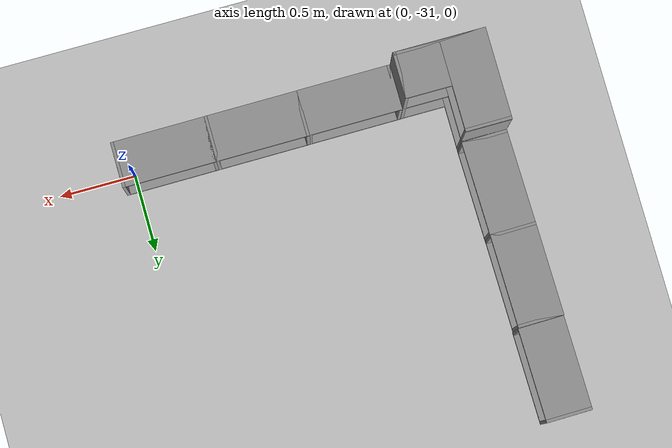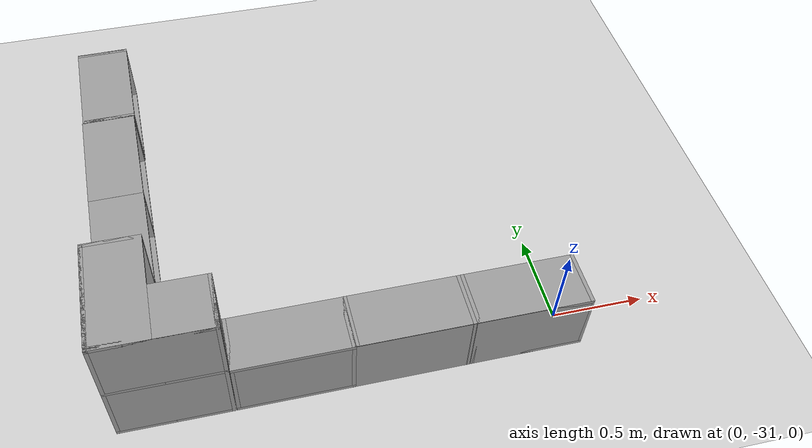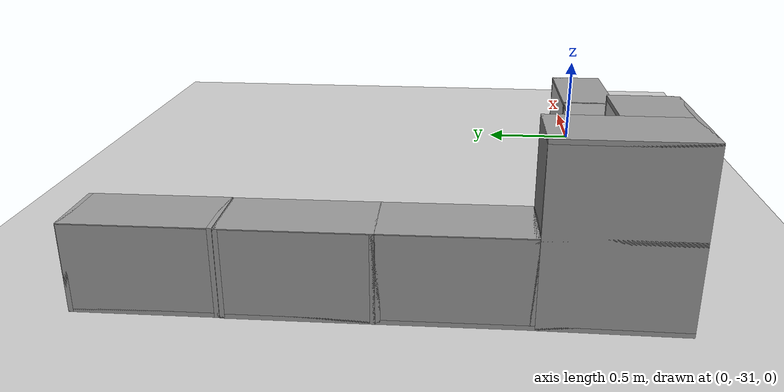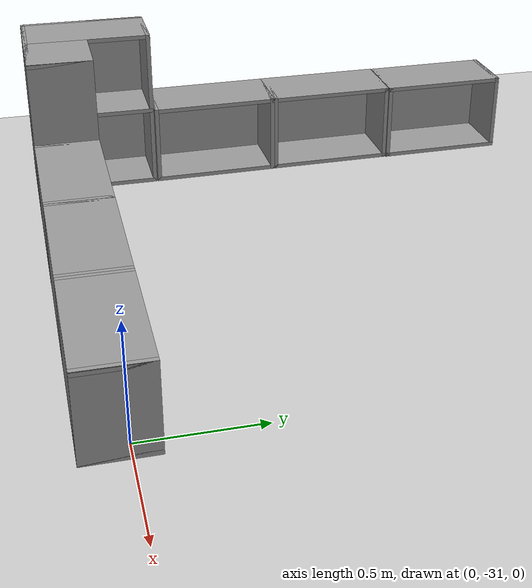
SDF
<sdf version="1.7">
 <world name="default">
  <include><uri>model://ground_plane</uri></include>
  <model name="Wall_Cabinet_24x15W">
   <link name="Wall_41">
    <pose>0 0 0.01 0 -0 0</pose>
    <inertial>
     <mass>1.4983</mass>
     <inertia><ixx>0.011</ixx><iyy>0.0571</iyy><izz>0.0462</izz><ixy>0</ixy><ixz>0</ixz><iyz>0</iyz></inertia>
    </inertial>
    <collision name="Wall_41_Collision"><geometry><box><size>0.608 0.296 0.02</size></box></geometry></collision>
    <visual name="Wall_41_Visual">
     <geometry><box><size>0.608 0.296 0.02</size></box></geometry>
     <material>
      <script><uri>file://media/materials/scripts/gazebo.material</uri><name>Gazebo/Grey</name></script>
      <ambient>1 1 1 1</ambient>
     </material>
    </visual>
    <pose>0.000184 0.181953 0 0 -0 0</pose>
   </link>
   <joint name="41_43" type="fixed">
    <pose>-0.304 0 0 0 -0 0</pose>
    <parent>Wall_43</parent>
    <child>Wall_41</child>
    <axis><xyz>0 0 1</xyz><limit><lower>-1e+16</lower><upper>1e+16</upper></limit></axis>
   </joint>
   <joint name="41_45" type="fixed">
    <pose>0.304 0 0 0 -0 0</pose>
    <parent>Wall_45</parent>
    <child>Wall_41</child>
    <axis><xyz>0 0 1</xyz><limit><lower>-1e+16</lower><upper>1e+16</upper></limit></axis>
   </joint>
   <joint name="41_49" type="fixed">
    <pose>0 -0.148 0 0 -0 0</pose>
    <parent>Wall_49</parent>
    <child>Wall_41</child>
    <axis><xyz>0 0 1</xyz><limit><lower>-1e+16</lower><upper>1e+16</upper></limit></axis>
   </joint>
   <link name="Wall_43">
    <pose>-0.294 0 0.192 0 -0 0</pose>
    <inertial>
     <mass>0.9463</mass>
     <inertia><ixx>0.0069</ixx><iyy>0.0185</iyy><izz>0.0117</izz><ixy>0</ixy><ixz>0</ixz><iyz>0</iyz></inertia>
    </inertial>
    <collision name="Wall_43_Collision"><geometry><box><size>0.02 0.296 0.384</size></box></geometry></collision>
    <visual name="Wall_43_Visual">
     <geometry><box><size>0.02 0.296 0.384</size></box></geometry>
     <material>
      <script><uri>file://media/materials/scripts/gazebo.material</uri><name>Gazebo/Grey</name></script>
      <ambient>1 1 1 1</ambient>
     </material>
    </visual>
   </link>
   <link name="Wall_45">
    <pose>0.294 0 0.192 0 -0 0</pose>
    <inertial>
     <mass>0.9463</mass>
     <inertia><ixx>0.0069</ixx><iyy>0.0185</iyy><izz>0.0117</izz><ixy>0</ixy><ixz>0</ixz><iyz>0</iyz></inertia>
    </inertial>
    <collision name="Wall_45_Collision"><geometry><box><size>0.02 0.296 0.384</size></box></geometry></collision>
    <visual name="Wall_45_Visual">
     <geometry><box><size>0.02 0.296 0.384</size></box></geometry>
     <material>
      <script><uri>file://media/materials/scripts/gazebo.material</uri><name>Gazebo/Grey</name></script>
      <ambient>1 1 1 1</ambient>
     </material>
    </visual>
   </link>
   <link name="Wall_47">
    <pose>0 0 0.374 0 -0 0</pose>
    <inertial>
     <mass>1.4983</mass>
     <inertia><ixx>0.011</ixx><iyy>0.0571</iyy><izz>0.0462</izz><ixy>0</ixy><ixz>0</ixz><iyz>0</iyz></inertia>
    </inertial>
    <collision name="Wall_47_Collision"><geometry><box><size>0.608 0.296 0.02</size></box></geometry></collision>
    <visual name="Wall_47_Visual">
     <geometry><box><size>0.608 0.296 0.02</size></box></geometry>
     <material>
      <script><uri>file://media/materials/scripts/gazebo.material</uri><name>Gazebo/Grey</name></script>
      <ambient>1 1 1 1</ambient>
     </material>
    </visual>
   </link>
   <joint name="47_43" type="fixed">
    <pose>-0.304 0 0 0 -0 0</pose>
    <parent>Wall_43</parent>
    <child>Wall_47</child>
    <axis><xyz>0 0 1</xyz><limit><lower>-1e+16</lower><upper>1e+16</upper></limit></axis>
   </joint>
   <joint name="47_45" type="fixed">
    <pose>0.304 0 0 0 -0 0</pose>
    <parent>Wall_45</parent>
    <child>Wall_47</child>
    <axis><xyz>0 0 1</xyz><limit><lower>-1e+16</lower><upper>1e+16</upper></limit></axis>
   </joint>
   <joint name="47_49" type="fixed">
    <pose>0 -0.148 0 0 -0 0</pose>
    <parent>Wall_49</parent>
    <child>Wall_47</child>
    <axis><xyz>0 0 1</xyz><limit><lower>-1e+16</lower><upper>1e+16</upper></limit></axis>
   </joint>
   <link name="Wall_49">
    <pose>0 -0.138 0.19 0 -0 0</pose>
    <inertial>
     <mass>1.9108</mass>
     <inertia><ixx>0.0231</ixx><iyy>0.0582</iyy><izz>0.0811</izz><ixy>0</ixy><ixz>0</ixz><iyz>0</iyz></inertia>
    </inertial>
    <collision name="Wall_49_Collision"><geometry><box><size>0.604 0.02 0.38</size></box></geometry></collision>
    <visual name="Wall_49_Visual">
     <geometry><box><size>0.604 0.02 0.38</size></box></geometry>
     <material>
      <script><uri>file://media/materials/scripts/gazebo.material</uri><name>Gazebo/Grey</name></script>
      <ambient>1 1 1 1</ambient>
     </material>
    </visual>
   </link>
   <joint name="49_43" type="fixed">
    <pose>-0.302 0 0 0 -0 0</pose>
    <parent>Wall_41</parent>
    <child>Wall_49</child>
    <axis><xyz>0 1 0</xyz><limit><lower>-1e+16</lower><upper>1e+16</upper></limit></axis>
   </joint>
   <joint name="49_45" type="fixed">
    <pose>0.302 0 0 0 -0 0</pose>
    <parent>Wall_45</parent>
    <child>Wall_49</child>
    <axis><xyz>0 1 0</xyz><limit><lower>-1e+16</lower><upper>1e+16</upper></limit></axis>
   </joint>
   <static>1</static>
   <pose>-1.43427 -31.0459 0 0 -0 0.003071</pose>
  </model>
  <model name="Wall_Cabinet_Coin_24x30W">
   <link name="Wall_10">
    <pose>0.286 -0.148 0.384 0 -0 0</pose>
    <inertial>
     <mass>2.1259</mass>
     <inertia><ixx>0.0158</ixx><iyy>0.1202</iyy><izz>0.1046</izz><ixy>0</ixy><ixz>0</ixz><iyz>0</iyz></inertia>
    </inertial>
    <collision name="Wall_10_Collision"><geometry><box><size>0.02 0.296 0.768</size></box></geometry></collision>
    <visual name="Wall_10_Visual">
     <geometry><box><size>0.02 0.296 0.768</size></box></geometry>
     <material>
      <script><uri>file://media/materials/scripts/gazebo.material</uri><name>Gazebo/Grey</name></script>
      <ambient>1 1 1 1</ambient>
     </material>
    </visual>
   </link>
   <joint name="10_16" type="fixed">
    <pose>0 0 -0.374 0 -0 0</pose>
    <parent>Wall_16</parent>
    <child>Wall_10</child>
    <axis><xyz>1 0 0</xyz><limit><lower>-1e+16</lower><upper>1e+16</upper></limit></axis>
   </joint>
   <joint name="10_14" type="fixed">
    <parent>Wall_14</parent>
    <child>Wall_10</child>
    <axis><xyz>1 0 0</xyz><limit><lower>-1e+16</lower><upper>1e+16</upper></limit></axis>
   </joint>
   <joint name="10_12" type="fixed">
    <pose>0 0 0.374 0 -0 0</pose>
    <parent>Wall_12</parent>
    <child>Wall_10</child>
    <axis><xyz>1 0 0</xyz><limit><lower>-1e+16</lower><upper>1e+16</upper></limit></axis>
   </joint>
   <joint name="10_29" type="fixed">
    <pose>0 -0.148 0 0 -0 0</pose>
    <parent>Wall_29</parent>
    <child>Wall_10</child>
    <axis><xyz>1 0 0</xyz><limit><lower>-1e+16</lower><upper>1e+16</upper></limit></axis>
   </joint>
   <link name="Wall_12">
    <pose>0.148 -0.148 0.758 0 -0 0</pose>
    <inertial>
     <mass>0.8802</mass>
     <inertia><ixx>0.0065</ixx><iyy>0.0139</iyy><izz>0.0074</izz><ixy>0</ixy><ixz>0</ixz><iyz>0</iyz></inertia>
    </inertial>
    <collision name="Wall_12_Collision"><geometry><box><size>0.296 0.296 0.02</size></box></geometry></collision>
    <visual name="Wall_12_Visual">
     <geometry><box><size>0.296 0.296 0.02</size></box></geometry>
     <material>
      <script><uri>file://media/materials/scripts/gazebo.material</uri><name>Gazebo/Grey</name></script>
      <ambient>1 1 1 1</ambient>
     </material>
    </visual>
   </link>
   <joint name="12_29" type="fixed">
    <pose>0 -0.148 0 0 -0 0</pose>
    <parent>Wall_29</parent>
    <child>Wall_12</child>
    <axis><xyz>0 0 1</xyz><limit><lower>-1e+16</lower><upper>1e+16</upper></limit></axis>
   </joint>
   <link name="Wall_14">
    <pose>0.148 -0.148 0.384 0 -0 0</pose>
    <inertial>
     <mass>0.8802</mass>
     <inertia><ixx>0.0065</ixx><iyy>0.0139</iyy><izz>0.0074</izz><ixy>0</ixy><ixz>0</ixz><iyz>0</iyz></inertia>
    </inertial>
    <collision name="Wall_14_Collision"><geometry><box><size>0.296 0.296 0.02</size></box></geometry></collision>
    <visual name="Wall_14_Visual">
     <geometry><box><size>0.296 0.296 0.02</size></box></geometry>
     <material>
      <script><uri>file://media/materials/scripts/gazebo.material</uri><name>Gazebo/Grey</name></script>
      <ambient>1 1 1 1</ambient>
     </material>
    </visual>
   </link>
   <joint name="14_29" type="fixed">
    <pose>0 -0.148 0 0 -0 0</pose>
    <parent>Wall_29</parent>
    <child>Wall_14</child>
    <axis><xyz>0 1 0</xyz><limit><lower>-1e+16</lower><upper>1e+16</upper></limit></axis>
   </joint>
   <link name="Wall_16">
    <pose>0.148 -0.148 0.01 0 -0 0</pose>
    <inertial>
     <mass>0.8802</mass>
     <inertia><ixx>0.0065</ixx><iyy>0.0139</iyy><izz>0.0074</izz><ixy>0</ixy><ixz>0</ixz><iyz>0</iyz></inertia>
    </inertial>
    <collision name="Wall_16_Collision"><geometry><box><size>0.296 0.296 0.02</size></box></geometry></collision>
    <visual name="Wall_16_Visual">
     <geometry><box><size>0.296 0.296 0.02</size></box></geometry>
     <material>
      <script><uri>file://media/materials/scripts/gazebo.material</uri><name>Gazebo/Grey</name></script>
      <ambient>1 1 1 1</ambient>
     </material>
    </visual>
   </link>
   <joint name="16_29" type="fixed">
    <pose>0 -0.148 0 0 -0 0</pose>
    <parent>Wall_29</parent>
    <child>Wall_16</child>
    <axis><xyz>0 1 0</xyz><limit><lower>-1e+16</lower><upper>1e+16</upper></limit></axis>
   </joint>
   <link name="Wall_18">
    <pose>-0.148 0 0.01 0 -0 0</pose>
    <inertial>
     <mass>1.6525</mass>
     <inertia><ixx>0.0491</ixx><iyy>0.0613</iyy><izz>0.0123</izz><ixy>0</ixy><ixz>0</ixz><iyz>0</iyz></inertia>
    </inertial>
    <collision name="Wall_18_Collision"><geometry><box><size>0.296 0.592 0.02</size></box></geometry></collision>
    <visual name="Wall_18_Visual">
     <geometry><box><size>0.296 0.592 0.02</size></box></geometry>
     <material>
      <script><uri>file://media/materials/scripts/gazebo.material</uri><name>Gazebo/Grey</name></script>
      <ambient>1 1 1 1</ambient>
     </material>
    </visual>
   </link>
   <joint name="18_16" type="fixed">
    <pose>0.148 -0.148 0 0 -0 0</pose>
    <parent>Wall_16</parent>
    <child>Wall_18</child>
    <axis><xyz>1 0 0</xyz><limit><lower>-1e+16</lower><upper>1e+16</upper></limit></axis>
   </joint>
   <joint name="18_29" type="fixed">
    <pose>0 -0.296 0 0 -0 0</pose>
    <parent>Wall_29</parent>
    <child>Wall_18</child>
    <axis><xyz>0 1 0</xyz><limit><lower>-1e+16</lower><upper>1e+16</upper></limit></axis>
   </joint>
   <joint name="18_27" type="fixed">
    <pose>-0.148 0 0 0 -0 0</pose>
    <parent>Wall_27</parent>
    <child>Wall_18</child>
    <axis><xyz>1 0 0</xyz><limit><lower>-1e+16</lower><upper>1e+16</upper></limit></axis>
   </joint>
   <joint name="18_30" type="fixed">
    <pose>0 0.296 0 0 -0 0</pose>
    <parent>Wall_30</parent>
    <child>Wall_18</child>
    <axis><xyz>0 1 0</xyz><limit><lower>-1e+16</lower><upper>1e+16</upper></limit></axis>
   </joint>
   <link name="Wall_20">
    <pose>-0.148 0 0.384 0 -0 0</pose>
    <inertial>
     <mass>1.6525</mass>
     <inertia><ixx>0.0491</ixx><iyy>0.0613</iyy><izz>0.0123</izz><ixy>0</ixy><ixz>0</ixz><iyz>0</iyz></inertia>
    </inertial>
    <collision name="Wall_20_Collision"><geometry><box><size>0.296 0.592 0.02</size></box></geometry></collision>
    <visual name="Wall_20_Visual">
     <geometry><box><size>0.296 0.592 0.02</size></box></geometry>
     <material>
      <script><uri>file://media/materials/scripts/gazebo.material</uri><name>Gazebo/Grey</name></script>
      <ambient>1 1 1 1</ambient>
     </material>
    </visual>
   </link>
   <joint name="20_14" type="fixed">
    <pose>0.148 -0.148 0 0 -0 0</pose>
    <parent>Wall_14</parent>
    <child>Wall_20</child>
    <axis><xyz>1 0 0</xyz><limit><lower>-1e+16</lower><upper>1e+16</upper></limit></axis>
   </joint>
   <joint name="20_29" type="fixed">
    <pose>0 -0.296 0 0 -0 0</pose>
    <parent>Wall_29</parent>
    <child>Wall_20</child>
    <axis><xyz>0 1 0</xyz><limit><lower>-1e+16</lower><upper>1e+16</upper></limit></axis>
   </joint>
   <joint name="20_27" type="fixed">
    <pose>-0.148 0 0 0 -0 0</pose>
    <parent>Wall_27</parent>
    <child>Wall_20</child>
    <axis><xyz>1 0 0</xyz><limit><lower>-1e+16</lower><upper>1e+16</upper></limit></axis>
   </joint>
   <joint name="20_30" type="fixed">
    <pose>0 0.296 0 0 -0 0</pose>
    <parent>Wall_30</parent>
    <child>Wall_20</child>
    <axis><xyz>0 1 0</xyz><limit><lower>-1e+16</lower><upper>1e+16</upper></limit></axis>
   </joint>
   <link name="Wall_22">
    <pose>-0.148 0 0.758 0 -0 0</pose>
    <inertial>
     <mass>1.6525</mass>
     <inertia><ixx>0.0491</ixx><iyy>0.0613</iyy><izz>0.0123</izz><ixy>0</ixy><ixz>0</ixz><iyz>0</iyz></inertia>
    </inertial>
    <collision name="Wall_22_Collision"><geometry><box><size>0.296 0.592 0.02</size></box></geometry></collision>
    <visual name="Wall_22_Visual">
     <geometry><box><size>0.296 0.592 0.02</size></box></geometry>
     <material>
      <script><uri>file://media/materials/scripts/gazebo.material</uri><name>Gazebo/Grey</name></script>
      <ambient>1 1 1 1</ambient>
     </material>
    </visual>
   </link>
   <joint name="22_12" type="fixed">
    <pose>0.148 -0.148 0 0 -0 0</pose>
    <parent>Wall_12</parent>
    <child>Wall_22</child>
    <axis><xyz>1 0 0</xyz><limit><lower>-1e+16</lower><upper>1e+16</upper></limit></axis>
   </joint>
   <joint name="22_29" type="fixed">
    <pose>0 -0.296 0 0 -0 0</pose>
    <parent>Wall_29</parent>
    <child>Wall_22</child>
    <axis><xyz>0 1 0</xyz><limit><lower>-1e+16</lower><upper>1e+16</upper></limit></axis>
   </joint>
   <joint name="22_27" type="fixed">
    <pose>-0.148 0 0 0 -0 0</pose>
    <parent>Wall_27</parent>
    <child>Wall_22</child>
    <axis><xyz>1 0 0</xyz><limit><lower>-1e+16</lower><upper>1e+16</upper></limit></axis>
   </joint>
   <joint name="22_30" type="fixed">
    <pose>0 0.296 0 0 -0 0</pose>
    <parent>Wall_30</parent>
    <child>Wall_22</child>
    <axis><xyz>0 1 0</xyz><limit><lower>-1e+16</lower><upper>1e+16</upper></limit></axis>
   </joint>
   <link name="Wall_27">
    <pose>-0.286 0 0.384 0 -0 0</pose>
    <inertial>
     <mass>4.2589</mass>
     <inertia><ixx>0.1266</ixx><iyy>0.3358</iyy><izz>0.2095</izz><ixy>0</ixy><ixz>0</ixz><iyz>0</iyz></inertia>
    </inertial>
    <collision name="Wall_27_Collision"><geometry><box><size>0.02 0.592 0.768</size></box></geometry></collision>
    <visual name="Wall_27_Visual">
     <geometry><box><size>0.02 0.592 0.768</size></box></geometry>
     <material>
      <script><uri>file://media/materials/scripts/gazebo.material</uri><name>Gazebo/Grey</name></script>
      <ambient>1 1 1 1</ambient>
     </material>
    </visual>
   </link>
   <joint name="27_30" type="fixed">
    <pose>0 0.296 0 0 -0 0</pose>
    <parent>Wall_30</parent>
    <child>Wall_27</child>
    <axis><xyz>0 1 0</xyz><limit><lower>-1e+16</lower><upper>1e+16</upper></limit></axis>
   </joint>
   <link name="Wall_29">
    <pose>0 -0.286 0.384 0 -0 0</pose>
    <inertial>
     <mass>4.3176</mass>
     <inertia><ixx>0.134</ixx><iyy>0.2091</iyy><izz>0.3428</izz><ixy>0</ixy><ixz>0</ixz><iyz>0</iyz></inertia>
    </inertial>
    <collision name="Wall_29_Collision"><geometry><box><size>0.592 0.02 0.768</size></box></geometry></collision>
    <visual name="Wall_29_Visual">
     <geometry><box><size>0.592 0.02 0.768</size></box></geometry>
     <material>
      <script><uri>file://media/materials/scripts/gazebo.material</uri><name>Gazebo/Grey</name></script>
      <ambient>1 1 1 1</ambient>
     </material>
    </visual>
   </link>
   <link name="Wall_30">
    <pose>-0.148 0.286 0.384 0 -0 0</pose>
    <inertial>
     <mass>2.1093</mass>
     <inertia><ixx>0.1021</ixx><iyy>0.0157</iyy><izz>0.1177</izz><ixy>0</ixy><ixz>0</ixz><iyz>0</iyz></inertia>
    </inertial>
    <collision name="Wall_30_Collision"><geometry><box><size>0.296 0.02 0.768</size></box></geometry></collision>
    <visual name="Wall_30_Visual">
     <geometry><box><size>0.296 0.02 0.768</size></box></geometry>
     <material>
      <script><uri>file://media/materials/scripts/gazebo.material</uri><name>Gazebo/Grey</name></script>
      <ambient>1 1 1 1</ambient>
     </material>
    </visual>
   </link>
   <static>1</static>
   <pose>-2.03675 -30.8993 0 0 -0 0</pose>
  </model>
  <model name="Wall_Cabinet_24x15W_clone">
   <link name="Wall_41">
    <pose>0 0 0.01 0 -0 0</pose>
    <inertial>
     <mass>1.4983</mass>
     <inertia><ixx>0.011</ixx><iyy>0.0571</iyy><izz>0.0462</izz><ixy>0</ixy><ixz>0</ixz><iyz>0</iyz></inertia>
    </inertial>
    <collision name="Wall_41_Collision"><geometry><box><size>0.608 0.296 0.02</size></box></geometry></collision>
    <visual name="Wall_41_Visual">
     <geometry><box><size>0.608 0.296 0.02</size></box></geometry>
     <material>
      <script><uri>file://media/materials/scripts/gazebo.material</uri><name>Gazebo/Grey</name></script>
      <ambient>1 1 1 1</ambient>
     </material>
    </visual>
    <pose>0.000184 0.181953 0 0 -0 0</pose>
   </link>
   <joint name="41_43" type="fixed">
    <pose>-0.304 0 0 0 -0 0</pose>
    <parent>Wall_43</parent>
    <child>Wall_41</child>
    <axis><xyz>0 0 1</xyz><limit><lower>-1e+16</lower><upper>1e+16</upper></limit></axis>
   </joint>
   <joint name="41_45" type="fixed">
    <pose>0.304 0 0 0 -0 0</pose>
    <parent>Wall_45</parent>
    <child>Wall_41</child>
    <axis><xyz>0 0 1</xyz><limit><lower>-1e+16</lower><upper>1e+16</upper></limit></axis>
   </joint>
   <joint name="41_49" type="fixed">
    <pose>0 -0.148 0 0 -0 0</pose>
    <parent>Wall_49</parent>
    <child>Wall_41</child>
    <axis><xyz>0 0 1</xyz><limit><lower>-1e+16</lower><upper>1e+16</upper></limit></axis>
   </joint>
   <link name="Wall_43">
    <pose>-0.294 0 0.192 0 -0 0</pose>
    <inertial>
     <mass>0.9463</mass>
     <inertia><ixx>0.0069</ixx><iyy>0.0185</iyy><izz>0.0117</izz><ixy>0</ixy><ixz>0</ixz><iyz>0</iyz></inertia>
    </inertial>
    <collision name="Wall_43_Collision"><geometry><box><size>0.02 0.296 0.384</size></box></geometry></collision>
    <visual name="Wall_43_Visual">
     <geometry><box><size>0.02 0.296 0.384</size></box></geometry>
     <material>
      <script><uri>file://media/materials/scripts/gazebo.material</uri><name>Gazebo/Grey</name></script>
      <ambient>1 1 1 1</ambient>
     </material>
    </visual>
   </link>
   <link name="Wall_45">
    <pose>0.294 0 0.192 0 -0 0</pose>
    <inertial>
     <mass>0.9463</mass>
     <inertia><ixx>0.0069</ixx><iyy>0.0185</iyy><izz>0.0117</izz><ixy>0</ixy><ixz>0</ixz><iyz>0</iyz></inertia>
    </inertial>
    <collision name="Wall_45_Collision"><geometry><box><size>0.02 0.296 0.384</size></box></geometry></collision>
    <visual name="Wall_45_Visual">
     <geometry><box><size>0.02 0.296 0.384</size></box></geometry>
     <material>
      <script><uri>file://media/materials/scripts/gazebo.material</uri><name>Gazebo/Grey</name></script>
      <ambient>1 1 1 1</ambient>
     </material>
    </visual>
   </link>
   <link name="Wall_47">
    <pose>0 0 0.374 0 -0 0</pose>
    <inertial>
     <mass>1.4983</mass>
     <inertia><ixx>0.011</ixx><iyy>0.0571</iyy><izz>0.0462</izz><ixy>0</ixy><ixz>0</ixz><iyz>0</iyz></inertia>
    </inertial>
    <collision name="Wall_47_Collision"><geometry><box><size>0.608 0.296 0.02</size></box></geometry></collision>
    <visual name="Wall_47_Visual">
     <geometry><box><size>0.608 0.296 0.02</size></box></geometry>
     <material>
      <script><uri>file://media/materials/scripts/gazebo.material</uri><name>Gazebo/Grey</name></script>
      <ambient>1 1 1 1</ambient>
     </material>
    </visual>
   </link>
   <joint name="47_43" type="fixed">
    <pose>-0.304 0 0 0 -0 0</pose>
    <parent>Wall_43</parent>
    <child>Wall_47</child>
    <axis><xyz>0 0 1</xyz><limit><lower>-1e+16</lower><upper>1e+16</upper></limit></axis>
   </joint>
   <joint name="47_45" type="fixed">
    <pose>0.304 0 0 0 -0 0</pose>
    <parent>Wall_45</parent>
    <child>Wall_47</child>
    <axis><xyz>0 0 1</xyz><limit><lower>-1e+16</lower><upper>1e+16</upper></limit></axis>
   </joint>
   <joint name="47_49" type="fixed">
    <pose>0 -0.148 0 0 -0 0</pose>
    <parent>Wall_49</parent>
    <child>Wall_47</child>
    <axis><xyz>0 0 1</xyz><limit><lower>-1e+16</lower><upper>1e+16</upper></limit></axis>
   </joint>
   <link name="Wall_49">
    <pose>0 -0.138 0.19 0 -0 0</pose>
    <inertial>
     <mass>1.9108</mass>
     <inertia><ixx>0.0231</ixx><iyy>0.0582</iyy><izz>0.0811</izz><ixy>0</ixy><ixz>0</ixz><iyz>0</iyz></inertia>
    </inertial>
    <collision name="Wall_49_Collision"><geometry><box><size>0.604 0.02 0.38</size></box></geometry></collision>
    <visual name="Wall_49_Visual">
     <geometry><box><size>0.604 0.02 0.38</size></box></geometry>
     <material>
      <script><uri>file://media/materials/scripts/gazebo.material</uri><name>Gazebo/Grey</name></script>
      <ambient>1 1 1 1</ambient>
     </material>
    </visual>
   </link>
   <joint name="49_43" type="fixed">
    <pose>-0.302 0 0 0 -0 0</pose>
    <parent>Wall_41</parent>
    <child>Wall_49</child>
    <axis><xyz>0 1 0</xyz><limit><lower>-1e+16</lower><upper>1e+16</upper></limit></axis>
   </joint>
   <joint name="49_45" type="fixed">
    <pose>0.302 0 0 0 -0 0</pose>
    <parent>Wall_45</parent>
    <child>Wall_49</child>
    <axis><xyz>0 1 0</xyz><limit><lower>-1e+16</lower><upper>1e+16</upper></limit></axis>
   </joint>
   <static>1</static>
   <pose>-0.830104 -31.0433 0 0 -0 0.003071</pose>
  </model>
  <model name="Wall_Cabinet_24x15W_clone_0">
   <link name="Wall_41">
    <pose>0 0 0.01 0 -0 0</pose>
    <inertial>
     <mass>1.4983</mass>
     <inertia><ixx>0.011</ixx><iyy>0.0571</iyy><izz>0.0462</izz><ixy>0</ixy><ixz>0</ixz><iyz>0</iyz></inertia>
    </inertial>
    <collision name="Wall_41_Collision"><geometry><box><size>0.608 0.296 0.02</size></box></geometry></collision>
    <visual name="Wall_41_Visual">
     <geometry><box><size>0.608 0.296 0.02</size></box></geometry>
     <material>
      <script><uri>file://media/materials/scripts/gazebo.material</uri><name>Gazebo/Grey</name></script>
      <ambient>1 1 1 1</ambient>
     </material>
    </visual>
    <pose>0.000184 0.181953 0 0 -0 0</pose>
   </link>
   <joint name="41_43" type="fixed">
    <pose>-0.304 0 0 0 -0 0</pose>
    <parent>Wall_43</parent>
    <child>Wall_41</child>
    <axis><xyz>0 0 1</xyz><limit><lower>-1e+16</lower><upper>1e+16</upper></limit></axis>
   </joint>
   <joint name="41_45" type="fixed">
    <pose>0.304 0 0 0 -0 0</pose>
    <parent>Wall_45</parent>
    <child>Wall_41</child>
    <axis><xyz>0 0 1</xyz><limit><lower>-1e+16</lower><upper>1e+16</upper></limit></axis>
   </joint>
   <joint name="41_49" type="fixed">
    <pose>0 -0.148 0 0 -0 0</pose>
    <parent>Wall_49</parent>
    <child>Wall_41</child>
    <axis><xyz>0 0 1</xyz><limit><lower>-1e+16</lower><upper>1e+16</upper></limit></axis>
   </joint>
   <link name="Wall_43">
    <pose>-0.294 0 0.192 0 -0 0</pose>
    <inertial>
     <mass>0.9463</mass>
     <inertia><ixx>0.0069</ixx><iyy>0.0185</iyy><izz>0.0117</izz><ixy>0</ixy><ixz>0</ixz><iyz>0</iyz></inertia>
    </inertial>
    <collision name="Wall_43_Collision"><geometry><box><size>0.02 0.296 0.384</size></box></geometry></collision>
    <visual name="Wall_43_Visual">
     <geometry><box><size>0.02 0.296 0.384</size></box></geometry>
     <material>
      <script><uri>file://media/materials/scripts/gazebo.material</uri><name>Gazebo/Grey</name></script>
      <ambient>1 1 1 1</ambient>
     </material>
    </visual>
   </link>
   <link name="Wall_45">
    <pose>0.294 0 0.192 0 -0 0</pose>
    <inertial>
     <mass>0.9463</mass>
     <inertia><ixx>0.0069</ixx><iyy>0.0185</iyy><izz>0.0117</izz><ixy>0</ixy><ixz>0</ixz><iyz>0</iyz></inertia>
    </inertial>
    <collision name="Wall_45_Collision"><geometry><box><size>0.02 0.296 0.384</size></box></geometry></collision>
    <visual name="Wall_45_Visual">
     <geometry><box><size>0.02 0.296 0.384</size></box></geometry>
     <material>
      <script><uri>file://media/materials/scripts/gazebo.material</uri><name>Gazebo/Grey</name></script>
      <ambient>1 1 1 1</ambient>
     </material>
    </visual>
   </link>
   <link name="Wall_47">
    <pose>0 0 0.374 0 -0 0</pose>
    <inertial>
     <mass>1.4983</mass>
     <inertia><ixx>0.011</ixx><iyy>0.0571</iyy><izz>0.0462</izz><ixy>0</ixy><ixz>0</ixz><iyz>0</iyz></inertia>
    </inertial>
    <collision name="Wall_47_Collision"><geometry><box><size>0.608 0.296 0.02</size></box></geometry></collision>
    <visual name="Wall_47_Visual">
     <geometry><box><size>0.608 0.296 0.02</size></box></geometry>
     <material>
      <script><uri>file://media/materials/scripts/gazebo.material</uri><name>Gazebo/Grey</name></script>
      <ambient>1 1 1 1</ambient>
     </material>
    </visual>
   </link>
   <joint name="47_43" type="fixed">
    <pose>-0.304 0 0 0 -0 0</pose>
    <parent>Wall_43</parent>
    <child>Wall_47</child>
    <axis><xyz>0 0 1</xyz><limit><lower>-1e+16</lower><upper>1e+16</upper></limit></axis>
   </joint>
   <joint name="47_45" type="fixed">
    <pose>0.304 0 0 0 -0 0</pose>
    <parent>Wall_45</parent>
    <child>Wall_47</child>
    <axis><xyz>0 0 1</xyz><limit><lower>-1e+16</lower><upper>1e+16</upper></limit></axis>
   </joint>
   <joint name="47_49" type="fixed">
    <pose>0 -0.148 0 0 -0 0</pose>
    <parent>Wall_49</parent>
    <child>Wall_47</child>
    <axis><xyz>0 0 1</xyz><limit><lower>-1e+16</lower><upper>1e+16</upper></limit></axis>
   </joint>
   <link name="Wall_49">
    <pose>0 -0.138 0.19 0 -0 0</pose>
    <inertial>
     <mass>1.9108</mass>
     <inertia><ixx>0.0231</ixx><iyy>0.0582</iyy><izz>0.0811</izz><ixy>0</ixy><ixz>0</ixz><iyz>0</iyz></inertia>
    </inertial>
    <collision name="Wall_49_Collision"><geometry><box><size>0.604 0.02 0.38</size></box></geometry></collision>
    <visual name="Wall_49_Visual">
     <geometry><box><size>0.604 0.02 0.38</size></box></geometry>
     <material>
      <script><uri>file://media/materials/scripts/gazebo.material</uri><name>Gazebo/Grey</name></script>
      <ambient>1 1 1 1</ambient>
     </material>
    </visual>
   </link>
   <joint name="49_43" type="fixed">
    <pose>-0.302 0 0 0 -0 0</pose>
    <parent>Wall_41</parent>
    <child>Wall_49</child>
    <axis><xyz>0 1 0</xyz><limit><lower>-1e+16</lower><upper>1e+16</upper></limit></axis>
   </joint>
   <joint name="49_45" type="fixed">
    <pose>0.302 0 0 0 -0 0</pose>
    <parent>Wall_45</parent>
    <child>Wall_49</child>
    <axis><xyz>0 1 0</xyz><limit><lower>-1e+16</lower><upper>1e+16</upper></limit></axis>
   </joint>
   <static>1</static>
   <pose>-0.22268 -31.0411 0 0 -0 0.003071</pose>
  </model>
  <model name="Wall_Cabinet_24x15W_clone_0_clone_0">
   <link name="Wall_41">
    <pose>0 0 0.01 0 -0 0</pose>
    <inertial>
     <mass>1.4983</mass>
     <inertia><ixx>0.011</ixx><iyy>0.0571</iyy><izz>0.0462</izz><ixy>0</ixy><ixz>0</ixz><iyz>0</iyz></inertia>
    </inertial>
    <collision name="Wall_41_Collision"><geometry><box><size>0.608 0.296 0.02</size></box></geometry></collision>
    <visual name="Wall_41_Visual">
     <geometry><box><size>0.608 0.296 0.02</size></box></geometry>
     <material>
      <script><uri>file://media/materials/scripts/gazebo.material</uri><name>Gazebo/Grey</name></script>
      <ambient>1 1 1 1</ambient>
     </material>
    </visual>
    <pose>0.000184 0.181953 0 0 -0 0</pose>
   </link>
   <joint name="41_43" type="fixed">
    <pose>-0.304 0 0 0 -0 0</pose>
    <parent>Wall_43</parent>
    <child>Wall_41</child>
    <axis><xyz>0 0 1</xyz><limit><lower>-1e+16</lower><upper>1e+16</upper></limit></axis>
   </joint>
   <joint name="41_45" type="fixed">
    <pose>0.304 0 0 0 -0 0</pose>
    <parent>Wall_45</parent>
    <child>Wall_41</child>
    <axis><xyz>0 0 1</xyz><limit><lower>-1e+16</lower><upper>1e+16</upper></limit></axis>
   </joint>
   <joint name="41_49" type="fixed">
    <pose>0 -0.148 0 0 -0 0</pose>
    <parent>Wall_49</parent>
    <child>Wall_41</child>
    <axis><xyz>0 0 1</xyz><limit><lower>-1e+16</lower><upper>1e+16</upper></limit></axis>
   </joint>
   <link name="Wall_43">
    <pose>-0.294 0 0.192 0 -0 0</pose>
    <inertial>
     <mass>0.9463</mass>
     <inertia><ixx>0.0069</ixx><iyy>0.0185</iyy><izz>0.0117</izz><ixy>0</ixy><ixz>0</ixz><iyz>0</iyz></inertia>
    </inertial>
    <collision name="Wall_43_Collision"><geometry><box><size>0.02 0.296 0.384</size></box></geometry></collision>
    <visual name="Wall_43_Visual">
     <geometry><box><size>0.02 0.296 0.384</size></box></geometry>
     <material>
      <script><uri>file://media/materials/scripts/gazebo.material</uri><name>Gazebo/Grey</name></script>
      <ambient>1 1 1 1</ambient>
     </material>
    </visual>
   </link>
   <link name="Wall_45">
    <pose>0.294 0 0.192 0 -0 0</pose>
    <inertial>
     <mass>0.9463</mass>
     <inertia><ixx>0.0069</ixx><iyy>0.0185</iyy><izz>0.0117</izz><ixy>0</ixy><ixz>0</ixz><iyz>0</iyz></inertia>
    </inertial>
    <collision name="Wall_45_Collision"><geometry><box><size>0.02 0.296 0.384</size></box></geometry></collision>
    <visual name="Wall_45_Visual">
     <geometry><box><size>0.02 0.296 0.384</size></box></geometry>
     <material>
      <script><uri>file://media/materials/scripts/gazebo.material</uri><name>Gazebo/Grey</name></script>
      <ambient>1 1 1 1</ambient>
     </material>
    </visual>
   </link>
   <link name="Wall_47">
    <pose>0 0 0.374 0 -0 0</pose>
    <inertial>
     <mass>1.4983</mass>
     <inertia><ixx>0.011</ixx><iyy>0.0571</iyy><izz>0.0462</izz><ixy>0</ixy><ixz>0</ixz><iyz>0</iyz></inertia>
    </inertial>
    <collision name="Wall_47_Collision"><geometry><box><size>0.608 0.296 0.02</size></box></geometry></collision>
    <visual name="Wall_47_Visual">
     <geometry><box><size>0.608 0.296 0.02</size></box></geometry>
     <material>
      <script><uri>file://media/materials/scripts/gazebo.material</uri><name>Gazebo/Grey</name></script>
      <ambient>1 1 1 1</ambient>
     </material>
    </visual>
   </link>
   <joint name="47_43" type="fixed">
    <pose>-0.304 0 0 0 -0 0</pose>
    <parent>Wall_43</parent>
    <child>Wall_47</child>
    <axis><xyz>0 0 1</xyz><limit><lower>-1e+16</lower><upper>1e+16</upper></limit></axis>
   </joint>
   <joint name="47_45" type="fixed">
    <pose>0.304 0 0 0 -0 0</pose>
    <parent>Wall_45</parent>
    <child>Wall_47</child>
    <axis><xyz>0 0 1</xyz><limit><lower>-1e+16</lower><upper>1e+16</upper></limit></axis>
   </joint>
   <joint name="47_49" type="fixed">
    <pose>0 -0.148 0 0 -0 0</pose>
    <parent>Wall_49</parent>
    <child>Wall_47</child>
    <axis><xyz>0 0 1</xyz><limit><lower>-1e+16</lower><upper>1e+16</upper></limit></axis>
   </joint>
   <link name="Wall_49">
    <pose>0 -0.138 0.19 0 -0 0</pose>
    <inertial>
     <mass>1.9108</mass>
     <inertia><ixx>0.0231</ixx><iyy>0.0582</iyy><izz>0.0811</izz><ixy>0</ixy><ixz>0</ixz><iyz>0</iyz></inertia>
    </inertial>
    <collision name="Wall_49_Collision"><geometry><box><size>0.604 0.02 0.38</size></box></geometry></collision>
    <visual name="Wall_49_Visual">
     <geometry><box><size>0.604 0.02 0.38</size></box></geometry>
     <material>
      <script><uri>file://media/materials/scripts/gazebo.material</uri><name>Gazebo/Grey</name></script>
      <ambient>1 1 1 1</ambient>
     </material>
    </visual>
   </link>
   <joint name="49_43" type="fixed">
    <pose>-0.302 0 0 0 -0 0</pose>
    <parent>Wall_41</parent>
    <child>Wall_49</child>
    <axis><xyz>0 1 0</xyz><limit><lower>-1e+16</lower><upper>1e+16</upper></limit></axis>
   </joint>
   <joint name="49_45" type="fixed">
    <pose>0.302 0 0 0 -0 0</pose>
    <parent>Wall_45</parent>
    <child>Wall_49</child>
    <axis><xyz>0 1 0</xyz><limit><lower>-1e+16</lower><upper>1e+16</upper></limit></axis>
   </joint>
   <static>1</static>
   <pose>-2.19847 -29.6905 0 0 -0 -1.55757</pose>
  </model>
  <model name="Wall_Cabinet_24x15W_clone_0_clone_1">
   <link name="Wall_41">
    <pose>0 0 0.01 0 -0 0</pose>
    <inertial>
     <mass>1.4983</mass>
     <inertia><ixx>0.011</ixx><iyy>0.0571</iyy><izz>0.0462</izz><ixy>0</ixy><ixz>0</ixz><iyz>0</iyz></inertia>
    </inertial>
    <collision name="Wall_41_Collision"><geometry><box><size>0.608 0.296 0.02</size></box></geometry></collision>
    <visual name="Wall_41_Visual">
     <geometry><box><size>0.608 0.296 0.02</size></box></geometry>
     <material>
      <script><uri>file://media/materials/scripts/gazebo.material</uri><name>Gazebo/Grey</name></script>
      <ambient>1 1 1 1</ambient>
     </material>
    </visual>
    <pose>0.000184 0.181953 0 0 -0 0</pose>
   </link>
   <joint name="41_43" type="fixed">
    <pose>-0.304 0 0 0 -0 0</pose>
    <parent>Wall_43</parent>
    <child>Wall_41</child>
    <axis><xyz>0 0 1</xyz><limit><lower>-1e+16</lower><upper>1e+16</upper></limit></axis>
   </joint>
   <joint name="41_45" type="fixed">
    <pose>0.304 0 0 0 -0 0</pose>
    <parent>Wall_45</parent>
    <child>Wall_41</child>
    <axis><xyz>0 0 1</xyz><limit><lower>-1e+16</lower><upper>1e+16</upper></limit></axis>
   </joint>
   <joint name="41_49" type="fixed">
    <pose>0 -0.148 0 0 -0 0</pose>
    <parent>Wall_49</parent>
    <child>Wall_41</child>
    <axis><xyz>0 0 1</xyz><limit><lower>-1e+16</lower><upper>1e+16</upper></limit></axis>
   </joint>
   <link name="Wall_43">
    <pose>-0.294 0 0.192 0 -0 0</pose>
    <inertial>
     <mass>0.9463</mass>
     <inertia><ixx>0.0069</ixx><iyy>0.0185</iyy><izz>0.0117</izz><ixy>0</ixy><ixz>0</ixz><iyz>0</iyz></inertia>
    </inertial>
    <collision name="Wall_43_Collision"><geometry><box><size>0.02 0.296 0.384</size></box></geometry></collision>
    <visual name="Wall_43_Visual">
     <geometry><box><size>0.02 0.296 0.384</size></box></geometry>
     <material>
      <script><uri>file://media/materials/scripts/gazebo.material</uri><name>Gazebo/Grey</name></script>
      <ambient>1 1 1 1</ambient>
     </material>
    </visual>
   </link>
   <link name="Wall_45">
    <pose>0.294 0 0.192 0 -0 0</pose>
    <inertial>
     <mass>0.9463</mass>
     <inertia><ixx>0.0069</ixx><iyy>0.0185</iyy><izz>0.0117</izz><ixy>0</ixy><ixz>0</ixz><iyz>0</iyz></inertia>
    </inertial>
    <collision name="Wall_45_Collision"><geometry><box><size>0.02 0.296 0.384</size></box></geometry></collision>
    <visual name="Wall_45_Visual">
     <geometry><box><size>0.02 0.296 0.384</size></box></geometry>
     <material>
      <script><uri>file://media/materials/scripts/gazebo.material</uri><name>Gazebo/Grey</name></script>
      <ambient>1 1 1 1</ambient>
     </material>
    </visual>
   </link>
   <link name="Wall_47">
    <pose>0 0 0.374 0 -0 0</pose>
    <inertial>
     <mass>1.4983</mass>
     <inertia><ixx>0.011</ixx><iyy>0.0571</iyy><izz>0.0462</izz><ixy>0</ixy><ixz>0</ixz><iyz>0</iyz></inertia>
    </inertial>
    <collision name="Wall_47_Collision"><geometry><box><size>0.608 0.296 0.02</size></box></geometry></collision>
    <visual name="Wall_47_Visual">
     <geometry><box><size>0.608 0.296 0.02</size></box></geometry>
     <material>
      <script><uri>file://media/materials/scripts/gazebo.material</uri><name>Gazebo/Grey</name></script>
      <ambient>1 1 1 1</ambient>
     </material>
    </visual>
   </link>
   <joint name="47_43" type="fixed">
    <pose>-0.304 0 0 0 -0 0</pose>
    <parent>Wall_43</parent>
    <child>Wall_47</child>
    <axis><xyz>0 0 1</xyz><limit><lower>-1e+16</lower><upper>1e+16</upper></limit></axis>
   </joint>
   <joint name="47_45" type="fixed">
    <pose>0.304 0 0 0 -0 0</pose>
    <parent>Wall_45</parent>
    <child>Wall_47</child>
    <axis><xyz>0 0 1</xyz><limit><lower>-1e+16</lower><upper>1e+16</upper></limit></axis>
   </joint>
   <joint name="47_49" type="fixed">
    <pose>0 -0.148 0 0 -0 0</pose>
    <parent>Wall_49</parent>
    <child>Wall_47</child>
    <axis><xyz>0 0 1</xyz><limit><lower>-1e+16</lower><upper>1e+16</upper></limit></axis>
   </joint>
   <link name="Wall_49">
    <pose>0 -0.138 0.19 0 -0 0</pose>
    <inertial>
     <mass>1.9108</mass>
     <inertia><ixx>0.0231</ixx><iyy>0.0582</iyy><izz>0.0811</izz><ixy>0</ixy><ixz>0</ixz><iyz>0</iyz></inertia>
    </inertial>
    <collision name="Wall_49_Collision"><geometry><box><size>0.604 0.02 0.38</size></box></geometry></collision>
    <visual name="Wall_49_Visual">
     <geometry><box><size>0.604 0.02 0.38</size></box></geometry>
     <material>
      <script><uri>file://media/materials/scripts/gazebo.material</uri><name>Gazebo/Grey</name></script>
      <ambient>1 1 1 1</ambient>
     </material>
    </visual>
   </link>
   <joint name="49_43" type="fixed">
    <pose>-0.302 0 0 0 -0 0</pose>
    <parent>Wall_41</parent>
    <child>Wall_49</child>
    <axis><xyz>0 1 0</xyz><limit><lower>-1e+16</lower><upper>1e+16</upper></limit></axis>
   </joint>
   <joint name="49_45" type="fixed">
    <pose>0.302 0 0 0 -0 0</pose>
    <parent>Wall_45</parent>
    <child>Wall_49</child>
    <axis><xyz>0 1 0</xyz><limit><lower>-1e+16</lower><upper>1e+16</upper></limit></axis>
   </joint>
   <static>1</static>
   <pose>-2.1889 -30.2974 0 0 0 -1.55477</pose>
  </model>
  <model name="Wall_Cabinet_24x15W_clone_0_clone_0_clone">
   <link name="Wall_41">
    <pose>0 0 0.01 0 -0 0</pose>
    <inertial>
     <mass>1.4983</mass>
     <inertia><ixx>0.011</ixx><iyy>0.0571</iyy><izz>0.0462</izz><ixy>0</ixy><ixz>0</ixz><iyz>0</iyz></inertia>
    </inertial>
    <collision name="Wall_41_Collision"><geometry><box><size>0.608 0.296 0.02</size></box></geometry></collision>
    <visual name="Wall_41_Visual">
     <geometry><box><size>0.608 0.296 0.02</size></box></geometry>
     <material>
      <script><uri>file://media/materials/scripts/gazebo.material</uri><name>Gazebo/Grey</name></script>
      <ambient>1 1 1 1</ambient>
     </material>
    </visual>
    <pose>0.000184 0.181953 0 0 -0 0</pose>
   </link>
   <joint name="41_43" type="fixed">
    <pose>-0.304 0 0 0 -0 0</pose>
    <parent>Wall_43</parent>
    <child>Wall_41</child>
    <axis><xyz>0 0 1</xyz><limit><lower>-1e+16</lower><upper>1e+16</upper></limit></axis>
   </joint>
   <joint name="41_45" type="fixed">
    <pose>0.304 0 0 0 -0 0</pose>
    <parent>Wall_45</parent>
    <child>Wall_41</child>
    <axis><xyz>0 0 1</xyz><limit><lower>-1e+16</lower><upper>1e+16</upper></limit></axis>
   </joint>
   <joint name="41_49" type="fixed">
    <pose>0 -0.148 0 0 -0 0</pose>
    <parent>Wall_49</parent>
    <child>Wall_41</child>
    <axis><xyz>0 0 1</xyz><limit><lower>-1e+16</lower><upper>1e+16</upper></limit></axis>
   </joint>
   <link name="Wall_43">
    <pose>-0.294 0 0.192 0 -0 0</pose>
    <inertial>
     <mass>0.9463</mass>
     <inertia><ixx>0.0069</ixx><iyy>0.0185</iyy><izz>0.0117</izz><ixy>0</ixy><ixz>0</ixz><iyz>0</iyz></inertia>
    </inertial>
    <collision name="Wall_43_Collision"><geometry><box><size>0.02 0.296 0.384</size></box></geometry></collision>
    <visual name="Wall_43_Visual">
     <geometry><box><size>0.02 0.296 0.384</size></box></geometry>
     <material>
      <script><uri>file://media/materials/scripts/gazebo.material</uri><name>Gazebo/Grey</name></script>
      <ambient>1 1 1 1</ambient>
     </material>
    </visual>
   </link>
   <link name="Wall_45">
    <pose>0.294 0 0.192 0 -0 0</pose>
    <inertial>
     <mass>0.9463</mass>
     <inertia><ixx>0.0069</ixx><iyy>0.0185</iyy><izz>0.0117</izz><ixy>0</ixy><ixz>0</ixz><iyz>0</iyz></inertia>
    </inertial>
    <collision name="Wall_45_Collision"><geometry><box><size>0.02 0.296 0.384</size></box></geometry></collision>
    <visual name="Wall_45_Visual">
     <geometry><box><size>0.02 0.296 0.384</size></box></geometry>
     <material>
      <script><uri>file://media/materials/scripts/gazebo.material</uri><name>Gazebo/Grey</name></script>
      <ambient>1 1 1 1</ambient>
     </material>
    </visual>
   </link>
   <link name="Wall_47">
    <pose>0 0 0.374 0 -0 0</pose>
    <inertial>
     <mass>1.4983</mass>
     <inertia><ixx>0.011</ixx><iyy>0.0571</iyy><izz>0.0462</izz><ixy>0</ixy><ixz>0</ixz><iyz>0</iyz></inertia>
    </inertial>
    <collision name="Wall_47_Collision"><geometry><box><size>0.608 0.296 0.02</size></box></geometry></collision>
    <visual name="Wall_47_Visual">
     <geometry><box><size>0.608 0.296 0.02</size></box></geometry>
     <material>
      <script><uri>file://media/materials/scripts/gazebo.material</uri><name>Gazebo/Grey</name></script>
      <ambient>1 1 1 1</ambient>
     </material>
    </visual>
   </link>
   <joint name="47_43" type="fixed">
    <pose>-0.304 0 0 0 -0 0</pose>
    <parent>Wall_43</parent>
    <child>Wall_47</child>
    <axis><xyz>0 0 1</xyz><limit><lower>-1e+16</lower><upper>1e+16</upper></limit></axis>
   </joint>
   <joint name="47_45" type="fixed">
    <pose>0.304 0 0 0 -0 0</pose>
    <parent>Wall_45</parent>
    <child>Wall_47</child>
    <axis><xyz>0 0 1</xyz><limit><lower>-1e+16</lower><upper>1e+16</upper></limit></axis>
   </joint>
   <joint name="47_49" type="fixed">
    <pose>0 -0.148 0 0 -0 0</pose>
    <parent>Wall_49</parent>
    <child>Wall_47</child>
    <axis><xyz>0 0 1</xyz><limit><lower>-1e+16</lower><upper>1e+16</upper></limit></axis>
   </joint>
   <link name="Wall_49">
    <pose>0 -0.138 0.19 0 -0 0</pose>
    <inertial>
     <mass>1.9108</mass>
     <inertia><ixx>0.0231</ixx><iyy>0.0582</iyy><izz>0.0811</izz><ixy>0</ixy><ixz>0</ixz><iyz>0</iyz></inertia>
    </inertial>
    <collision name="Wall_49_Collision"><geometry><box><size>0.604 0.02 0.38</size></box></geometry></collision>
    <visual name="Wall_49_Visual">
     <geometry><box><size>0.604 0.02 0.38</size></box></geometry>
     <material>
      <script><uri>file://media/materials/scripts/gazebo.material</uri><name>Gazebo/Grey</name></script>
      <ambient>1 1 1 1</ambient>
     </material>
    </visual>
   </link>
   <joint name="49_43" type="fixed">
    <pose>-0.302 0 0 0 -0 0</pose>
    <parent>Wall_41</parent>
    <child>Wall_49</child>
    <axis><xyz>0 1 0</xyz><limit><lower>-1e+16</lower><upper>1e+16</upper></limit></axis>
   </joint>
   <joint name="49_45" type="fixed">
    <pose>0.302 0 0 0 -0 0</pose>
    <parent>Wall_45</parent>
    <child>Wall_49</child>
    <axis><xyz>0 1 0</xyz><limit><lower>-1e+16</lower><upper>1e+16</upper></limit></axis>
   </joint>
   <static>1</static>
   <pose>-2.20284 -29.0802 0 0 0 -1.55757</pose>
  </model>
 </world>
</sdf>
